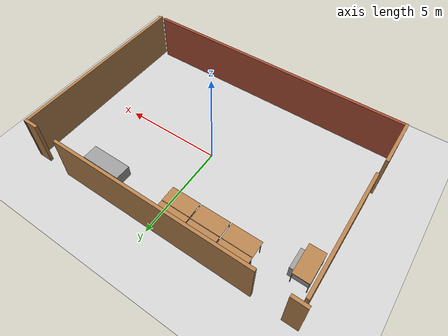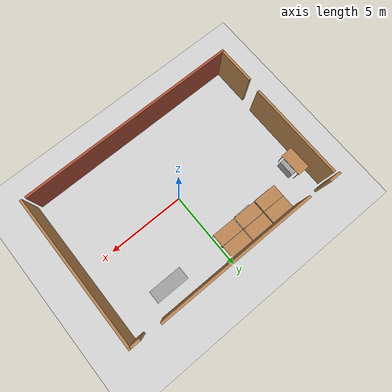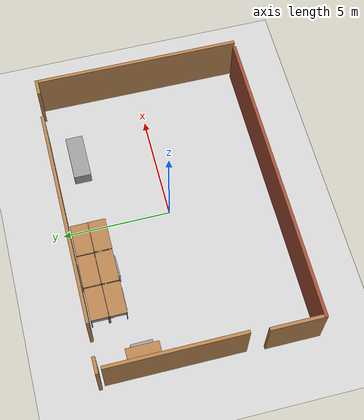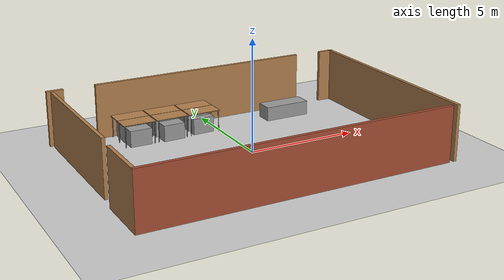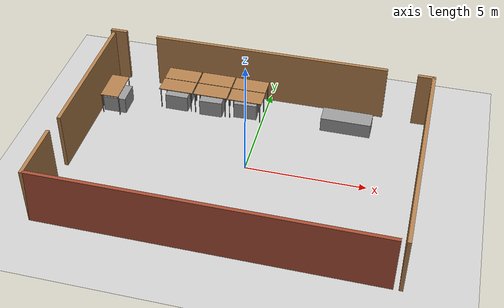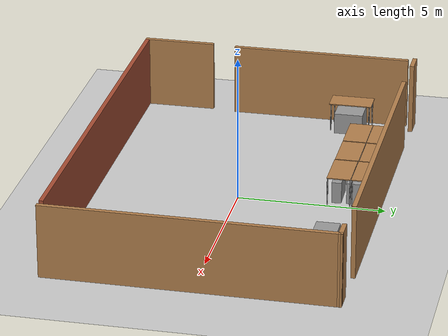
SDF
<sdf version="1.6">
 <world name="default">
  <model name="ground_plane">
   <static>1</static>
   <link name="link">
    <collision name="collision">
     <geometry><plane><normal>0 0 1</normal><size>100 100</size></plane></geometry>
     <surface><friction><ode><mu>100</mu><mu2>50</mu2></ode></friction></surface>
    </collision>
    <visual name="visual">
     <cast_shadows>0</cast_shadows>
     <geometry><plane><normal>0 0 1</normal><size>100 100</size></plane></geometry>
     <material>
      <script><uri>file://media/materials/scripts/gazebo.material</uri><name>Gazebo/Grey</name></script>
     </material>
    </visual>
   </link>
  </model>
  <model name="irl_lab">
   <pose>-2.86583 8.6417 0 0 -0 0</pose>
   <link name="Wall_116">
    <collision name="Wall_116_Collision">
     <geometry><box><size>9.68203 0.15 2.5</size></box></geometry>
     <pose>0 0 1.25 0 -0 0</pose>
    </collision>
    <visual name="Wall_116_Visual">
     <pose>0 0 1.25 0 -0 0</pose>
     <geometry><box><size>9.68203 0.15 2.5</size></box></geometry>
     <material>
      <script><uri>file://media/materials/scripts/gazebo.material</uri><name>Gazebo/Wood</name></script>
      <ambient>1 1 1 1</ambient>
     </material>
     <meta><layer>0</layer></meta>
    </visual>
    <pose>9.80412 -8.73069 0 0 -0 -1.57459</pose>
   </link>
   <link name="Wall_53">
    <collision name="Wall_53_Collision">
     <geometry><box><size>0.75 0.15 2.5</size></box></geometry>
     <pose>0 0 1.25 0 -0 0</pose>
    </collision>
    <visual name="Wall_53_Visual">
     <pose>0 0 1.25 0 -0 0</pose>
     <geometry><box><size>0.75 0.15 2.5</size></box></geometry>
     <material>
      <script><uri>file://media/materials/scripts/gazebo.material</uri><name>Gazebo/Wood</name></script>
      <ambient>1 1 1 1</ambient>
     </material>
     <meta><layer>0</layer></meta>
    </visual>
    <pose>9.52221 -3.96471 0 0 -0 3.14159</pose>
   </link>
   <link name="Wall_55">
    <collision name="Wall_55_Collision">
     <geometry><box><size>10.25 0.15 2.5</size></box></geometry>
     <pose>0 0 1.25 0 -0 0</pose>
    </collision>
    <visual name="Wall_55_Visual">
     <pose>0 0 1.25 0 -0 0</pose>
     <geometry><box><size>10.25 0.15 2.5</size></box></geometry>
     <material>
      <script><uri>file://media/materials/scripts/gazebo.material</uri><name>Gazebo/Wood</name></script>
      <ambient>1 1 1 1</ambient>
     </material>
     <meta><layer>0</layer></meta>
    </visual>
    <pose>2.75881 -3.88237 0 0 -0 3.14159</pose>
   </link>
   <link name="Wall_57">
    <collision name="Wall_57_Collision">
     <geometry><box><size>0.75 0.15 2.5</size></box></geometry>
     <pose>0 0 1.25 0 -0 0</pose>
    </collision>
    <visual name="Wall_57_Visual">
     <pose>0 0 1.25 0 -0 0</pose>
     <geometry><box><size>0.75 0.15 2.5</size></box></geometry>
     <material>
      <script><uri>file://media/materials/scripts/gazebo.material</uri><name>Gazebo/Wood</name></script>
      <ambient>1 1 1 1</ambient>
     </material>
     <meta><layer>0</layer></meta>
    </visual>
    <pose>-4.15564 -3.81624 0 0 -0 3.14159</pose>
   </link>
   <link name="Wall_59">
    <collision name="Wall_59_Collision">
     <geometry><box><size>6.25 0.15 2.5</size></box></geometry>
     <pose>0 0 1.25 0 -0 0</pose>
    </collision>
    <visual name="Wall_59_Visual">
     <pose>0 0 1.25 0 -0 0</pose>
     <geometry><box><size>6.25 0.15 2.5</size></box></geometry>
     <material>
      <script><uri>file://media/materials/scripts/gazebo.material</uri><name>Gazebo/Wood</name></script>
      <ambient>1 1 1 1</ambient>
     </material>
     <meta><layer>0</layer></meta>
    </visual>
    <pose>-4.31981 -7.14788 0 0 -0 -1.5708</pose>
   </link>
   <link name="Wall_66">
    <collision name="Wall_66_Collision">
     <geometry><box><size>2.5 0.15 2.5</size></box></geometry>
     <pose>0 0 1.25 0 -0 0</pose>
    </collision>
    <visual name="Wall_66_Visual">
     <pose>0 0 1.25 0 -0 0</pose>
     <geometry><box><size>2.5 0.15 2.5</size></box></geometry>
     <material>
      <script><uri>file://media/materials/scripts/gazebo.material</uri><name>Gazebo/Wood</name></script>
      <ambient>1 1 1 1</ambient>
     </material>
     <meta><layer>0</layer></meta>
    </visual>
    <pose>-4.41397 -12.3217 0 0 -0 -1.5708</pose>
   </link>
   <link name="Wall_67">
    <collision name="Wall_67_Collision">
     <geometry><box><size>14 0.15 2.5</size></box></geometry>
     <pose>0 0 1.25 0 -0 0</pose>
    </collision>
    <visual name="Wall_67_Visual">
     <pose>0 0 1.25 0 -0 0</pose>
     <geometry><box><size>14 0.15 2.5</size></box></geometry>
     <material>
      <script><uri>file://media/materials/scripts/gazebo.material</uri><name>Gazebo/Bricks</name></script>
      <ambient>1 1 1 1</ambient>
     </material>
     <meta><layer>0</layer></meta>
    </visual>
    <pose>2.51103 -13.4967 0 0 -0 0</pose>
   </link>
   <static>1</static>
  </model>
  <model name="table_clone_4">
   <static>1</static>
   <link name="link">
    <collision name="surface">
     <pose>0 0 1 0 -0 0</pose>
     <geometry><box><size>1.5 0.8 0.03</size></box></geometry>
     <surface><friction><ode><mu>0.6</mu><mu2>0.6</mu2></ode></friction></surface>
    </collision>
    <visual name="visual1">
     <pose>0 0 1 0 -0 0</pose>
     <geometry><box><size>1.5 0.8 0.03</size></box></geometry>
     <material>
      <script><uri>file://media/materials/scripts/gazebo.material</uri><name>Gazebo/Wood</name></script>
     </material>
    </visual>
    <collision name="front_left_leg">
     <pose>0.68 0.38 0.5 0 -0 0</pose>
     <geometry><cylinder><radius>0.02</radius><length>1</length></cylinder></geometry>
    </collision>
    <visual name="front_left_leg">
     <pose>0.68 0.38 0.5 0 -0 0</pose>
     <geometry><cylinder><radius>0.02</radius><length>1</length></cylinder></geometry>
     <material>
      <script><uri>file://media/materials/scripts/gazebo.material</uri><name>Gazebo/Grey</name></script>
     </material>
    </visual>
    <collision name="front_right_leg">
     <pose>0.68 -0.38 0.5 0 -0 0</pose>
     <geometry><cylinder><radius>0.02</radius><length>1</length></cylinder></geometry>
    </collision>
    <visual name="front_right_leg">
     <pose>0.68 -0.38 0.5 0 -0 0</pose>
     <geometry><cylinder><radius>0.02</radius><length>1</length></cylinder></geometry>
     <material>
      <script><uri>file://media/materials/scripts/gazebo.material</uri><name>Gazebo/Grey</name></script>
     </material>
    </visual>
    <collision name="back_right_leg">
     <pose>-0.68 -0.38 0.5 0 -0 0</pose>
     <geometry><cylinder><radius>0.02</radius><length>1</length></cylinder></geometry>
    </collision>
    <visual name="back_right_leg">
     <pose>-0.68 -0.38 0.5 0 -0 0</pose>
     <geometry><cylinder><radius>0.02</radius><length>1</length></cylinder></geometry>
     <material>
      <script><uri>file://media/materials/scripts/gazebo.material</uri><name>Gazebo/Grey</name></script>
     </material>
    </visual>
    <collision name="back_left_leg">
     <pose>-0.68 0.38 0.5 0 -0 0</pose>
     <geometry><cylinder><radius>0.02</radius><length>1</length></cylinder></geometry>
    </collision>
    <visual name="back_left_leg">
     <pose>-0.68 0.38 0.5 0 -0 0</pose>
     <geometry><cylinder><radius>0.02</radius><length>1</length></cylinder></geometry>
     <material>
      <script><uri>file://media/materials/scripts/gazebo.material</uri><name>Gazebo/Grey</name></script>
     </material>
    </visual>
   </link>
   <pose>-6.58238 2.73197 0 0 0 -1.56663</pose>
  </model>
  <model name="table_0">
   <static>1</static>
   <link name="link">
    <collision name="surface">
     <pose>0 0 1 0 -0 0</pose>
     <geometry><box><size>1.5 0.8 0.03</size></box></geometry>
     <surface><friction><ode><mu>0.6</mu><mu2>0.6</mu2></ode></friction></surface>
    </collision>
    <visual name="visual1">
     <pose>0 0 1 0 -0 0</pose>
     <geometry><box><size>1.5 0.8 0.03</size></box></geometry>
     <material>
      <script><uri>file://media/materials/scripts/gazebo.material</uri><name>Gazebo/Wood</name></script>
     </material>
    </visual>
    <collision name="front_left_leg">
     <pose>0.68 0.38 0.5 0 -0 0</pose>
     <geometry><cylinder><radius>0.02</radius><length>1</length></cylinder></geometry>
    </collision>
    <visual name="front_left_leg">
     <pose>0.68 0.38 0.5 0 -0 0</pose>
     <geometry><cylinder><radius>0.02</radius><length>1</length></cylinder></geometry>
     <material>
      <script><uri>file://media/materials/scripts/gazebo.material</uri><name>Gazebo/Grey</name></script>
     </material>
    </visual>
    <collision name="front_right_leg">
     <pose>0.68 -0.38 0.5 0 -0 0</pose>
     <geometry><cylinder><radius>0.02</radius><length>1</length></cylinder></geometry>
    </collision>
    <visual name="front_right_leg">
     <pose>0.68 -0.38 0.5 0 -0 0</pose>
     <geometry><cylinder><radius>0.02</radius><length>1</length></cylinder></geometry>
     <material>
      <script><uri>file://media/materials/scripts/gazebo.material</uri><name>Gazebo/Grey</name></script>
     </material>
    </visual>
    <collision name="back_right_leg">
     <pose>-0.68 -0.38 0.5 0 -0 0</pose>
     <geometry><cylinder><radius>0.02</radius><length>1</length></cylinder></geometry>
    </collision>
    <visual name="back_right_leg">
     <pose>-0.68 -0.38 0.5 0 -0 0</pose>
     <geometry><cylinder><radius>0.02</radius><length>1</length></cylinder></geometry>
     <material>
      <script><uri>file://media/materials/scripts/gazebo.material</uri><name>Gazebo/Grey</name></script>
     </material>
    </visual>
    <collision name="back_left_leg">
     <pose>-0.68 0.38 0.5 0 -0 0</pose>
     <geometry><cylinder><radius>0.02</radius><length>1</length></cylinder></geometry>
    </collision>
    <visual name="back_left_leg">
     <pose>-0.68 0.38 0.5 0 -0 0</pose>
     <geometry><cylinder><radius>0.02</radius><length>1</length></cylinder></geometry>
     <material>
      <script><uri>file://media/materials/scripts/gazebo.material</uri><name>Gazebo/Grey</name></script>
     </material>
    </visual>
   </link>
   <pose>-3.88442 4.22573 0 0 -0 0</pose>
  </model>
  <model name="table_0_clone">
   <static>1</static>
   <link name="link">
    <collision name="surface">
     <pose>0 0 1 0 -0 0</pose>
     <geometry><box><size>1.5 0.8 0.03</size></box></geometry>
     <surface><friction><ode><mu>0.6</mu><mu2>0.6</mu2></ode></friction></surface>
    </collision>
    <visual name="visual1">
     <pose>0 0 1 0 -0 0</pose>
     <geometry><box><size>1.5 0.8 0.03</size></box></geometry>
     <material>
      <script><uri>file://media/materials/scripts/gazebo.material</uri><name>Gazebo/Wood</name></script>
     </material>
    </visual>
    <collision name="front_left_leg">
     <pose>0.68 0.38 0.5 0 -0 0</pose>
     <geometry><cylinder><radius>0.02</radius><length>1</length></cylinder></geometry>
    </collision>
    <visual name="front_left_leg">
     <pose>0.68 0.38 0.5 0 -0 0</pose>
     <geometry><cylinder><radius>0.02</radius><length>1</length></cylinder></geometry>
     <material>
      <script><uri>file://media/materials/scripts/gazebo.material</uri><name>Gazebo/Grey</name></script>
     </material>
    </visual>
    <collision name="front_right_leg">
     <pose>0.68 -0.38 0.5 0 -0 0</pose>
     <geometry><cylinder><radius>0.02</radius><length>1</length></cylinder></geometry>
    </collision>
    <visual name="front_right_leg">
     <pose>0.68 -0.38 0.5 0 -0 0</pose>
     <geometry><cylinder><radius>0.02</radius><length>1</length></cylinder></geometry>
     <material>
      <script><uri>file://media/materials/scripts/gazebo.material</uri><name>Gazebo/Grey</name></script>
     </material>
    </visual>
    <collision name="back_right_leg">
     <pose>-0.68 -0.38 0.5 0 -0 0</pose>
     <geometry><cylinder><radius>0.02</radius><length>1</length></cylinder></geometry>
    </collision>
    <visual name="back_right_leg">
     <pose>-0.68 -0.38 0.5 0 -0 0</pose>
     <geometry><cylinder><radius>0.02</radius><length>1</length></cylinder></geometry>
     <material>
      <script><uri>file://media/materials/scripts/gazebo.material</uri><name>Gazebo/Grey</name></script>
     </material>
    </visual>
    <collision name="back_left_leg">
     <pose>-0.68 0.38 0.5 0 -0 0</pose>
     <geometry><cylinder><radius>0.02</radius><length>1</length></cylinder></geometry>
    </collision>
    <visual name="back_left_leg">
     <pose>-0.68 0.38 0.5 0 -0 0</pose>
     <geometry><cylinder><radius>0.02</radius><length>1</length></cylinder></geometry>
     <material>
      <script><uri>file://media/materials/scripts/gazebo.material</uri><name>Gazebo/Grey</name></script>
     </material>
    </visual>
   </link>
   <pose>-2.33203 4.23486 0 0 -0 0</pose>
  </model>
  <model name="table_0_clone_0">
   <static>1</static>
   <link name="link">
    <collision name="surface">
     <pose>0 0 1 0 -0 0</pose>
     <geometry><box><size>1.5 0.8 0.03</size></box></geometry>
     <surface><friction><ode><mu>0.6</mu><mu2>0.6</mu2></ode></friction></surface>
    </collision>
    <visual name="visual1">
     <pose>0 0 1 0 -0 0</pose>
     <geometry><box><size>1.5 0.8 0.03</size></box></geometry>
     <material>
      <script><uri>file://media/materials/scripts/gazebo.material</uri><name>Gazebo/Wood</name></script>
     </material>
    </visual>
    <collision name="front_left_leg">
     <pose>0.68 0.38 0.5 0 -0 0</pose>
     <geometry><cylinder><radius>0.02</radius><length>1</length></cylinder></geometry>
    </collision>
    <visual name="front_left_leg">
     <pose>0.68 0.38 0.5 0 -0 0</pose>
     <geometry><cylinder><radius>0.02</radius><length>1</length></cylinder></geometry>
     <material>
      <script><uri>file://media/materials/scripts/gazebo.material</uri><name>Gazebo/Grey</name></script>
     </material>
    </visual>
    <collision name="front_right_leg">
     <pose>0.68 -0.38 0.5 0 -0 0</pose>
     <geometry><cylinder><radius>0.02</radius><length>1</length></cylinder></geometry>
    </collision>
    <visual name="front_right_leg">
     <pose>0.68 -0.38 0.5 0 -0 0</pose>
     <geometry><cylinder><radius>0.02</radius><length>1</length></cylinder></geometry>
     <material>
      <script><uri>file://media/materials/scripts/gazebo.material</uri><name>Gazebo/Grey</name></script>
     </material>
    </visual>
    <collision name="back_right_leg">
     <pose>-0.68 -0.38 0.5 0 -0 0</pose>
     <geometry><cylinder><radius>0.02</radius><length>1</length></cylinder></geometry>
    </collision>
    <visual name="back_right_leg">
     <pose>-0.68 -0.38 0.5 0 -0 0</pose>
     <geometry><cylinder><radius>0.02</radius><length>1</length></cylinder></geometry>
     <material>
      <script><uri>file://media/materials/scripts/gazebo.material</uri><name>Gazebo/Grey</name></script>
     </material>
    </visual>
    <collision name="back_left_leg">
     <pose>-0.68 0.38 0.5 0 -0 0</pose>
     <geometry><cylinder><radius>0.02</radius><length>1</length></cylinder></geometry>
    </collision>
    <visual name="back_left_leg">
     <pose>-0.68 0.38 0.5 0 -0 0</pose>
     <geometry><cylinder><radius>0.02</radius><length>1</length></cylinder></geometry>
     <material>
      <script><uri>file://media/materials/scripts/gazebo.material</uri><name>Gazebo/Grey</name></script>
     </material>
    </visual>
   </link>
   <pose>-0.790986 4.22165 0 0 -0 0</pose>
  </model>
  <model name="table_0_clone_1">
   <static>1</static>
   <link name="link">
    <collision name="surface">
     <pose>0 0 1 0 -0 0</pose>
     <geometry><box><size>1.5 0.8 0.03</size></box></geometry>
     <surface><friction><ode><mu>0.6</mu><mu2>0.6</mu2></ode></friction></surface>
    </collision>
    <visual name="visual1">
     <pose>0 0 1 0 -0 0</pose>
     <geometry><box><size>1.5 0.8 0.03</size></box></geometry>
     <material>
      <script><uri>file://media/materials/scripts/gazebo.material</uri><name>Gazebo/Wood</name></script>
     </material>
    </visual>
    <collision name="front_left_leg">
     <pose>0.68 0.38 0.5 0 -0 0</pose>
     <geometry><cylinder><radius>0.02</radius><length>1</length></cylinder></geometry>
    </collision>
    <visual name="front_left_leg">
     <pose>0.68 0.38 0.5 0 -0 0</pose>
     <geometry><cylinder><radius>0.02</radius><length>1</length></cylinder></geometry>
     <material>
      <script><uri>file://media/materials/scripts/gazebo.material</uri><name>Gazebo/Grey</name></script>
     </material>
    </visual>
    <collision name="front_right_leg">
     <pose>0.68 -0.38 0.5 0 -0 0</pose>
     <geometry><cylinder><radius>0.02</radius><length>1</length></cylinder></geometry>
    </collision>
    <visual name="front_right_leg">
     <pose>0.68 -0.38 0.5 0 -0 0</pose>
     <geometry><cylinder><radius>0.02</radius><length>1</length></cylinder></geometry>
     <material>
      <script><uri>file://media/materials/scripts/gazebo.material</uri><name>Gazebo/Grey</name></script>
     </material>
    </visual>
    <collision name="back_right_leg">
     <pose>-0.68 -0.38 0.5 0 -0 0</pose>
     <geometry><cylinder><radius>0.02</radius><length>1</length></cylinder></geometry>
    </collision>
    <visual name="back_right_leg">
     <pose>-0.68 -0.38 0.5 0 -0 0</pose>
     <geometry><cylinder><radius>0.02</radius><length>1</length></cylinder></geometry>
     <material>
      <script><uri>file://media/materials/scripts/gazebo.material</uri><name>Gazebo/Grey</name></script>
     </material>
    </visual>
    <collision name="back_left_leg">
     <pose>-0.68 0.38 0.5 0 -0 0</pose>
     <geometry><cylinder><radius>0.02</radius><length>1</length></cylinder></geometry>
    </collision>
    <visual name="back_left_leg">
     <pose>-0.68 0.38 0.5 0 -0 0</pose>
     <geometry><cylinder><radius>0.02</radius><length>1</length></cylinder></geometry>
     <material>
      <script><uri>file://media/materials/scripts/gazebo.material</uri><name>Gazebo/Grey</name></script>
     </material>
    </visual>
   </link>
   <pose>-0.781426 3.39985 0 0 -0 0</pose>
  </model>
  <model name="table_0_clone_2">
   <static>1</static>
   <link name="link">
    <collision name="surface">
     <pose>0 0 1 0 -0 0</pose>
     <geometry><box><size>1.5 0.8 0.03</size></box></geometry>
     <surface><friction><ode><mu>0.6</mu><mu2>0.6</mu2></ode></friction></surface>
    </collision>
    <visual name="visual1">
     <pose>0 0 1 0 -0 0</pose>
     <geometry><box><size>1.5 0.8 0.03</size></box></geometry>
     <material>
      <script><uri>file://media/materials/scripts/gazebo.material</uri><name>Gazebo/Wood</name></script>
     </material>
    </visual>
    <collision name="front_left_leg">
     <pose>0.68 0.38 0.5 0 -0 0</pose>
     <geometry><cylinder><radius>0.02</radius><length>1</length></cylinder></geometry>
    </collision>
    <visual name="front_left_leg">
     <pose>0.68 0.38 0.5 0 -0 0</pose>
     <geometry><cylinder><radius>0.02</radius><length>1</length></cylinder></geometry>
     <material>
      <script><uri>file://media/materials/scripts/gazebo.material</uri><name>Gazebo/Grey</name></script>
     </material>
    </visual>
    <collision name="front_right_leg">
     <pose>0.68 -0.38 0.5 0 -0 0</pose>
     <geometry><cylinder><radius>0.02</radius><length>1</length></cylinder></geometry>
    </collision>
    <visual name="front_right_leg">
     <pose>0.68 -0.38 0.5 0 -0 0</pose>
     <geometry><cylinder><radius>0.02</radius><length>1</length></cylinder></geometry>
     <material>
      <script><uri>file://media/materials/scripts/gazebo.material</uri><name>Gazebo/Grey</name></script>
     </material>
    </visual>
    <collision name="back_right_leg">
     <pose>-0.68 -0.38 0.5 0 -0 0</pose>
     <geometry><cylinder><radius>0.02</radius><length>1</length></cylinder></geometry>
    </collision>
    <visual name="back_right_leg">
     <pose>-0.68 -0.38 0.5 0 -0 0</pose>
     <geometry><cylinder><radius>0.02</radius><length>1</length></cylinder></geometry>
     <material>
      <script><uri>file://media/materials/scripts/gazebo.material</uri><name>Gazebo/Grey</name></script>
     </material>
    </visual>
    <collision name="back_left_leg">
     <pose>-0.68 0.38 0.5 0 -0 0</pose>
     <geometry><cylinder><radius>0.02</radius><length>1</length></cylinder></geometry>
    </collision>
    <visual name="back_left_leg">
     <pose>-0.68 0.38 0.5 0 -0 0</pose>
     <geometry><cylinder><radius>0.02</radius><length>1</length></cylinder></geometry>
     <material>
      <script><uri>file://media/materials/scripts/gazebo.material</uri><name>Gazebo/Grey</name></script>
     </material>
    </visual>
   </link>
   <pose>-2.33509 3.41138 0 0 -0 0</pose>
  </model>
  <model name="table_0_clone_3">
   <static>1</static>
   <link name="link">
    <collision name="surface">
     <pose>0 0 1 0 -0 0</pose>
     <geometry><box><size>1.5 0.8 0.03</size></box></geometry>
     <surface><friction><ode><mu>0.6</mu><mu2>0.6</mu2></ode></friction></surface>
    </collision>
    <visual name="visual1">
     <pose>0 0 1 0 -0 0</pose>
     <geometry><box><size>1.5 0.8 0.03</size></box></geometry>
     <material>
      <script><uri>file://media/materials/scripts/gazebo.material</uri><name>Gazebo/Wood</name></script>
     </material>
    </visual>
    <collision name="front_left_leg">
     <pose>0.68 0.38 0.5 0 -0 0</pose>
     <geometry><cylinder><radius>0.02</radius><length>1</length></cylinder></geometry>
    </collision>
    <visual name="front_left_leg">
     <pose>0.68 0.38 0.5 0 -0 0</pose>
     <geometry><cylinder><radius>0.02</radius><length>1</length></cylinder></geometry>
     <material>
      <script><uri>file://media/materials/scripts/gazebo.material</uri><name>Gazebo/Grey</name></script>
     </material>
    </visual>
    <collision name="front_right_leg">
     <pose>0.68 -0.38 0.5 0 -0 0</pose>
     <geometry><cylinder><radius>0.02</radius><length>1</length></cylinder></geometry>
    </collision>
    <visual name="front_right_leg">
     <pose>0.68 -0.38 0.5 0 -0 0</pose>
     <geometry><cylinder><radius>0.02</radius><length>1</length></cylinder></geometry>
     <material>
      <script><uri>file://media/materials/scripts/gazebo.material</uri><name>Gazebo/Grey</name></script>
     </material>
    </visual>
    <collision name="back_right_leg">
     <pose>-0.68 -0.38 0.5 0 -0 0</pose>
     <geometry><cylinder><radius>0.02</radius><length>1</length></cylinder></geometry>
    </collision>
    <visual name="back_right_leg">
     <pose>-0.68 -0.38 0.5 0 -0 0</pose>
     <geometry><cylinder><radius>0.02</radius><length>1</length></cylinder></geometry>
     <material>
      <script><uri>file://media/materials/scripts/gazebo.material</uri><name>Gazebo/Grey</name></script>
     </material>
    </visual>
    <collision name="back_left_leg">
     <pose>-0.68 0.38 0.5 0 -0 0</pose>
     <geometry><cylinder><radius>0.02</radius><length>1</length></cylinder></geometry>
    </collision>
    <visual name="back_left_leg">
     <pose>-0.68 0.38 0.5 0 -0 0</pose>
     <geometry><cylinder><radius>0.02</radius><length>1</length></cylinder></geometry>
     <material>
      <script><uri>file://media/materials/scripts/gazebo.material</uri><name>Gazebo/Grey</name></script>
     </material>
    </visual>
   </link>
   <pose>-3.88803 3.40855 0 0 -0 0</pose>
  </model>
  <model name="unit_box_clone_3">
   <pose>-6.47062 2.7145 0.369264 0 -0 0.004139</pose>
   <link name="link">
    <inertial>
     <mass>1</mass>
     <inertia>
      <ixx>0.166667</ixx>
      <ixy>0</ixy>
      <ixz>0</ixz>
      <iyy>0.166667</iyy>
      <iyz>0</iyz>
      <izz>0.166667</izz>
     </inertia>
    </inertial>
    <collision name="collision"><geometry><box><size>1 1 0.738528</size></box></geometry></collision>
    <visual name="visual">
     <geometry><box><size>1 1 0.738528</size></box></geometry>
     <material>
      <script><name>Gazebo/Grey</name><uri>file://media/materials/scripts/gazebo.material</uri></script>
     </material>
    </visual>
   </link>
  </model>
  <model name="unit_box_clone_4">
   <pose>-3.87838 4.12661 0.369264 0 0 -0.006621</pose>
   <link name="link">
    <inertial>
     <mass>1</mass>
     <inertia>
      <ixx>0.166667</ixx>
      <ixy>0</ixy>
      <ixz>0</ixz>
      <iyy>0.166667</iyy>
      <iyz>0</iyz>
      <izz>0.166667</izz>
     </inertia>
    </inertial>
    <collision name="collision"><geometry><box><size>1 1 0.738528</size></box></geometry></collision>
    <visual name="visual">
     <geometry><box><size>1 1 0.738528</size></box></geometry>
     <material>
      <script><name>Gazebo/Grey</name><uri>file://media/materials/scripts/gazebo.material</uri></script>
     </material>
    </visual>
   </link>
  </model>
  <model name="unit_box_clone_5">
   <pose>-3.85909 3.29828 0.369264 0 0 -0.006622</pose>
   <link name="link">
    <inertial>
     <mass>1</mass>
     <inertia>
      <ixx>0.166667</ixx>
      <ixy>0</ixy>
      <ixz>0</ixz>
      <iyy>0.166667</iyy>
      <iyz>0</iyz>
      <izz>0.166667</izz>
     </inertia>
    </inertial>
    <collision name="collision"><geometry><box><size>1 0.632279 0.738528</size></box></geometry></collision>
    <visual name="visual">
     <geometry><box><size>1 0.632279 0.738528</size></box></geometry>
     <material>
      <script><name>Gazebo/Grey</name><uri>file://media/materials/scripts/gazebo.material</uri></script>
     </material>
    </visual>
   </link>
  </model>
  <model name="unit_box_clone_6">
   <pose>-2.38326 4.16261 0.369264 0 0 -0.000103</pose>
   <link name="link">
    <inertial>
     <mass>1</mass>
     <inertia>
      <ixx>0.166667</ixx>
      <ixy>0</ixy>
      <ixz>0</ixz>
      <iyy>0.166667</iyy>
      <iyz>0</iyz>
      <izz>0.166667</izz>
     </inertia>
    </inertial>
    <collision name="collision"><geometry><box><size>1 1 0.738528</size></box></geometry></collision>
    <visual name="visual">
     <geometry><box><size>1 1 0.738528</size></box></geometry>
     <material>
      <script><name>Gazebo/Grey</name><uri>file://media/materials/scripts/gazebo.material</uri></script>
     </material>
    </visual>
   </link>
  </model>
  <model name="unit_box_clone_7">
   <pose>-2.30696 3.24937 0.369264 0 -0 0.029391</pose>
   <link name="link">
    <inertial>
     <mass>1</mass>
     <inertia>
      <ixx>0.166667</ixx>
      <ixy>0</ixy>
      <ixz>0</ixz>
      <iyy>0.166667</iyy>
      <iyz>0</iyz>
      <izz>0.166667</izz>
     </inertia>
    </inertial>
    <collision name="collision"><geometry><box><size>1 0.620267 0.738528</size></box></geometry></collision>
    <visual name="visual">
     <geometry><box><size>1 0.620267 0.738528</size></box></geometry>
     <material>
      <script><name>Gazebo/Grey</name><uri>file://media/materials/scripts/gazebo.material</uri></script>
     </material>
    </visual>
   </link>
  </model>
  <model name="unit_box_clone_8">
   <pose>-0.810466 4.12921 0.369264 0 0 -0.000102</pose>
   <link name="link">
    <inertial>
     <mass>1</mass>
     <inertia>
      <ixx>0.166667</ixx>
      <ixy>0</ixy>
      <ixz>0</ixz>
      <iyy>0.166667</iyy>
      <iyz>0</iyz>
      <izz>0.166667</izz>
     </inertia>
    </inertial>
    <collision name="collision"><geometry><box><size>1 1 0.738528</size></box></geometry></collision>
    <visual name="visual">
     <geometry><box><size>1 1 0.738528</size></box></geometry>
     <material>
      <script><name>Gazebo/Grey</name><uri>file://media/materials/scripts/gazebo.material</uri></script>
     </material>
    </visual>
   </link>
  </model>
  <model name="unit_box_clone_9">
   <pose>-0.794477 3.28125 0.369264 0 -0 0.029391</pose>
   <link name="link">
    <inertial>
     <mass>1</mass>
     <inertia>
      <ixx>0.166667</ixx>
      <ixy>0</ixy>
      <ixz>0</ixz>
      <iyy>0.166667</iyy>
      <iyz>0</iyz>
      <izz>0.166667</izz>
     </inertia>
    </inertial>
    <collision name="collision"><geometry><box><size>1 0.328187 0.738528</size></box></geometry></collision>
    <visual name="visual">
     <geometry><box><size>1 0.328187 0.738528</size></box></geometry>
     <material>
      <script><name>Gazebo/Grey</name><uri>file://media/materials/scripts/gazebo.material</uri></script>
     </material>
    </visual>
   </link>
  </model>
  <model name="unit_box_0_clone_0">
   <pose>3.61119 3.53393 0.32652 -6e-06 -2e-06 -0.001265</pose>
   <link name="link">
    <inertial>
     <mass>1</mass>
     <inertia>
      <ixx>0.166667</ixx>
      <ixy>0</ixy>
      <ixz>0</ixz>
      <iyy>0.166667</iyy>
      <iyz>0</iyz>
      <izz>0.166667</izz>
     </inertia>
    </inertial>
    <collision name="collision"><geometry><box><size>2.13947 0.797655 0.65305</size></box></geometry></collision>
    <visual name="visual">
     <geometry><box><size>2.13947 0.797655 0.65305</size></box></geometry>
     <material>
      <script><name>Gazebo/Grey</name><uri>file://media/materials/scripts/gazebo.material</uri></script>
     </material>
    </visual>
   </link>
  </model>
 </world>
</sdf>
